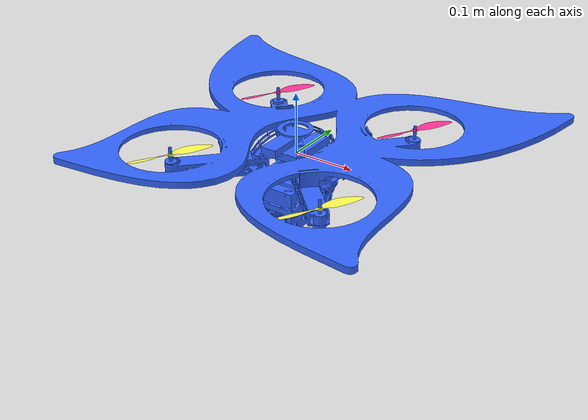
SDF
<?xml version="1.0" ?>
<sdf version='1.11'>
  <model name='Butterflybot'>

    <!-- ROBOT BODY -->

    <!-- Base -->
    <link name='base_link'>
      <inertial>
        <pose>0.0467837442624986 0.047668828289127 0.0302566124276802 0 0 0</pose>
        <mass>1.81343265737798</mass>
        <inertia>
          <ixx>0.0292434022065882</ixx>
          <ixy>2.3758686826485899e-07</ixy>
          <ixz>-0.00012290016217477099</ixz>
          <iyy>0.037851344971650498</iyy>
          <iyz>1.35402349531979e-06</iyz>
          <izz>0.0087084350366914698</izz>
        </inertia>
      </inertial>
      <collision name='base_link_collision'>
        <pose>0 0 0 0 0 0</pose>
        <geometry>
          <mesh>
            <scale>1 1 1</scale>
            <uri>model://meshes/base_link.STL</uri>
          </mesh>
        </geometry>
      </collision>
      <visual name='base_link_visual'>
        <pose>0 0 0 0 0 0</pose>
        <geometry>
          <mesh>
            <scale>1 1 1</scale>
            <uri>model://meshes/base_link.STL</uri>
          </mesh>
        </geometry>
        <material>
          <diffuse>0.2 0.4 1.0 1.0</diffuse>
          <ambient>0.2 0.4 1.0 1.0</ambient>
        </material>
      </visual>
    </link>

    <!-- Front Left -->
    <joint name='joint_front_left' type='revolute'>
      <pose relative_to='base_link'>-0.079189999999999997 0.062068999999999999 0.058430000000000003 1.5708 0 -0.27447999999999984</pose>
      <parent>base_link</parent>
      <child>link_front_left</child>
      <axis>
        <xyz>0 -1 0</xyz>
        <limit>
          <lower>-inf</lower>
          <upper>inf</upper>
        </limit>
        <dynamics>
          <spring_reference>0</spring_reference>
          <spring_stiffness>0</spring_stiffness>
        </dynamics>
      </axis>
    </joint>
    <link name='link_front_left'>
      <pose relative_to='joint_front_left'>0 0 0 0 0 0</pose>
      <inertial>
        <pose>-1.3158665906898301e-08 0.0030876204619819199 3.2896587114084099e-08 0 0 0</pose>
        <mass>0.00097127102853952004</mass>
        <inertia>
          <ixx>1.0768895837296399e-06</ixx>
          <ixy>3.8328099170122897e-14</ixy>
          <ixz>1.9302501471666401e-07</ixz>
          <iyy>1.1185884576620301e-06</iyy>
          <iyz>2.18108405894349e-14</iyz>
          <izz>4.3791642931003e-08</izz>
        </inertia>
      </inertial>
      <collision name='link_front_left_collision'>
        <pose>0 0 0 0 0 0</pose>
        <geometry>
          <mesh>
            <scale>1 1 1</scale>
            <uri>model://meshes/link_front_left.STL</uri>
          </mesh>
        </geometry>
      </collision>
      <visual name='link_front_left_visual'>
        <pose>0 0 0 0 0 0</pose>
        <geometry>
          <mesh>
            <scale>1 1 1</scale>
            <uri>model://meshes/link_front_left.STL</uri>
          </mesh>
        </geometry>
        <material>
          <diffuse>1.0 0.2 0.6 1.0</diffuse>
          <ambient>1.0 0.2 0.6 1.0</ambient>
        </material>
      </visual>
    </link>

    <!-- Front Right -->
    <joint name='joint_front_right' type='revolute'>
      <pose relative_to='base_link'>0.17136999999999999 0.062745999999999996 0.059461 1.5708 0 -0.27447999999999984</pose>
      <parent>base_link</parent>
      <child>link_front_right</child>
      <axis>
        <xyz>0 -1 0</xyz>
        <limit>
          <lower>-inf</lower>
          <upper>inf</upper>
        </limit>
        <dynamics>
          <spring_reference>0</spring_reference>
          <spring_stiffness>0</spring_stiffness>
        </dynamics>
      </axis>
    </joint>
    <link name='link_front_right'>
      <pose relative_to='joint_front_right'>0 0 0 0 0 0</pose>
      <inertial>
        <pose>1.10804414255039e-08 0.0030876220561473302 -7.1078507857258404e-08 0 0 0</pose>
        <mass>0.000971268794454539</mass>
        <inertia>
          <ixx>1.0768847108197401e-06</ixx>
          <ixy>5.65245392107505e-14</ixy>
          <ixz>1.93023878397352e-07</ixz>
          <iyy>1.1185833114050301e-06</iyy>
          <iyz>-5.1246892916307002e-14</iyz>
          <izz>4.3791367120243599e-08</izz>
        </inertia>
      </inertial>
      <collision name='link_front_right_collision'>
        <pose>0 0 0 0 0 0</pose>
        <geometry>
          <mesh>
            <scale>1 1 1</scale>
            <uri>model://meshes/link_front_right.STL</uri>
          </mesh>
        </geometry>
      </collision>
      <visual name='link_front_right_visual'>
        <pose>0 0 0 0 0 0</pose>
        <geometry>
          <mesh>
            <scale>1 1 1</scale>
            <uri>model://meshes/link_front_right.STL</uri>
          </mesh>
        </geometry>
        <material>
          <diffuse>1.0 0.2 0.6 1.0</diffuse>
          <ambient>1.0 0.2 0.6 1.0</ambient>
        </material>
      </visual>
    </link>

    <!-- Rear Left -->
    <joint name='joint_rear_left' type='revolute'>
      <pose relative_to='base_link'>-0.080467999999999998 -0.19675000000000001 0.054993 1.5708 0 -0.27447999999999984</pose>
      <parent>base_link</parent>
      <child>link_rear_left</child>
      <axis>
        <xyz>0 -1 0</xyz>
        <limit>
          <lower>-inf</lower>
          <upper>inf</upper>
        </limit>
        <dynamics>
          <spring_reference>0</spring_reference>
          <spring_stiffness>0</spring_stiffness>
        </dynamics>
      </axis>
    </joint>
    <link name='link_rear_left'>
      <pose relative_to='joint_rear_left'>0 0 0 0 0 0</pose>
      <inertial>
        <pose>-1.3159026139575301e-08 0.0030876236503368901 3.2898901047850897e-08 0 0 0</pose>
        <mass>0.00097127102853952004</mass>
        <inertia>
          <ixx>1.0768798381927601e-06</ixx>
          <ixy>3.8328125808511603e-14</ixy>
          <ixz>1.9302274210829399e-07</ixz>
          <iyy>1.1185781654340401e-06</iyy>
          <iyz>2.1811183096077101e-14</iyz>
          <izz>4.3791091312534198e-08</izz>
        </inertia>
      </inertial>
      <collision name='link_rear_left_collision'>
        <pose>0 0 0 0 0 0</pose>
        <geometry>
          <mesh>
            <scale>1 1 1</scale>
            <uri>model://meshes/link_rear_left.STL</uri>
          </mesh>
        </geometry>
      </collision>
      <visual name='link_rear_left_visual'>
        <pose>0 0 0 0 0 0</pose>
        <geometry>
          <mesh>
            <scale>1 1 1</scale>
            <uri>model://meshes/link_rear_left.STL</uri>
          </mesh>
        </geometry>
        <material>
          <diffuse>1.0 1.0 0.3 1.0</diffuse>
          <ambient>1.0 1.0 0.3 1.0</ambient>
        </material>
      </visual>
    </link>

    <!-- Rear Right -->
    <joint name='joint_rear_right' type='revolute'>
      <pose relative_to='base_link'>0.17607 -0.19605 0.051529999999999999 1.5708 0 -0.27447999999999984</pose>
      <parent>base_link</parent>
      <child>link_rear_right</child>
      <axis>
        <xyz>0 -1 0</xyz>
        <limit>
          <lower>-inf</lower>
          <upper>inf</upper>
        </limit>
        <dynamics>
          <spring_reference>0</spring_reference>
          <spring_stiffness>0</spring_stiffness>
        </dynamics>
      </axis>
    </joint>
    <link name='link_rear_right'>
      <pose relative_to='joint_rear_right'>0 0 0 0 0 0</pose>
      <inertial>
        <pose>1.1080436457255899e-08 0.0030876220561439202 -7.1077704361099894e-08 0 0 0</pose>
        <mass>0.000971268794454539</mass>
        <inertia>
          <ixx>1.0768847111581501e-06</ixx>
          <ixy>5.6524537061138701e-14</ixy>
          <ixz>1.93023878437882e-07</ixz>
          <iyy>1.1185833117482701e-06</iyy>
          <iyz>-5.1247553697434301e-14</iyz>
          <izz>4.3791367125021401e-08</izz>
        </inertia>
      </inertial>
      <collision name='link_rear_right_collision'>
        <pose>0 0 0 0 0 0</pose>
        <geometry>
          <mesh>
            <scale>1 1 1</scale>
            <uri>model://meshes/link_rear_right.STL</uri>
          </mesh>
        </geometry>
      </collision>
      <visual name='link_rear_right_visual'>
        <pose>0 0 0 0 0 0</pose>
        <geometry>
          <mesh>
            <scale>1 1 1</scale>
            <uri>model://meshes/link_rear_right.STL</uri>
          </mesh>
        </geometry>
        <material>
          <diffuse>1.0 1.0 0.3 1.0</diffuse>
          <ambient>1.0 1.0 0.3 1.0</ambient>
        </material>
      </visual>
    </link>

    <!-- SENSORS -->

    <!-- LiDAR-->
    <link name="lidar_link">
      <pose>0 0 0 0 0 -1.57</pose>
      <sensor name='gpu_lidar' type='gpu_lidar'>
        <pose relative_to='lidar_link'>0 0 0 0 0 3.14</pose>
        <topic>lidar_scan</topic>
        <update_rate>10</update_rate>
        <ray>
            <scan>
                <horizontal>
                    <samples>640</samples>
                    <resolution>1</resolution>
                    <min_angle>-1.396263</min_angle>
                    <max_angle>1.396263</max_angle>
                </horizontal>
                <vertical>
                    <samples>1</samples>
                    <resolution>0.01</resolution>
                    <min_angle>0</min_angle>
                    <max_angle>0</max_angle>
                </vertical>
            </scan>
            <range>
                <min>0.08</min>
                <max>10.0</max>
                <resolution>0.01</resolution>
            </range>
        </ray>
        <always_on>1</always_on>
        <visualize>true</visualize>
      </sensor>
    </link>

    <joint name="lidar_joint" type="fixed">
      <parent>base_link</parent>
      <child>lidar_link</child>
    </joint>

    <!-- Camera -->
    <link name="camera_link">
      <pose>0 0 0 0 0 -1.57</pose>
      <sensor name="boundingbox_camera" type="boundingbox_camera">
         <pose relative_to='camera_link'>0 0 0.5 0 0 3.14</pose>
         <topic>boxes</topic> <!-- Do not change this -->
         <camera>
           <box_type>2d</box_type>
           <horizontal_fov>1.047</horizontal_fov>
           <image>
             <width>800</width>
             <height>600</height>
           </image>
           <clip>
             <near>0.1</near>
             <far>10</far>
           </clip>
         </camera>
         <always_on>1</always_on>
         <update_rate>10</update_rate>
         <visualize>true</visualize>
      </sensor>
    </link>

    <joint name="camera_joint" type="fixed">
      <parent>base_link</parent>
      <child>camera_link</child>
    </joint>

    <!-- IMU -->
    <link name="imu_link">
      <sensor name="imu_sensor" type="imu">
        <pose relative_to='imu_link'>0 0 0.5 0 0 3.14</pose>
        <topic>imu/data</topic>
        <update_rate>100</update_rate>
        <always_on>true</always_on>
        <visualize>false</visualize>
        <imu>
          <linear_acceleration>
            <x>
              <noise type="gaussian">
                <mean>0.0</mean>
                <stddev>0.01</stddev>
              </noise>
            </x>
            <y>
              <noise type="gaussian">
                <mean>0.0</mean>
                <stddev>0.01</stddev>
              </noise>
            </y>
            <z>
              <noise type="gaussian">
                <mean>0.0</mean>
                <stddev>0.01</stddev>
              </noise>
            </z>
          </linear_acceleration>
          <angular_velocity>
            <x>
              <noise type="gaussian">
                <mean>0.0</mean>
                <stddev>0.01</stddev>
              </noise>
            </x>
            <y>
              <noise type="gaussian">
                <mean>0.0</mean>
                <stddev>0.01</stddev>
              </noise>
            </y>
            <z>
              <noise type="gaussian">
                <mean>0.0</mean>
                <stddev>0.01</stddev>
              </noise>
            </z>
          </angular_velocity>
        </imu>
      </sensor>
    </link>

    <joint name="imu_joint" type="fixed">
      <parent>base_link</parent>
      <child>imu_link</child>
    </joint>

    <!-- PLUGINS -->

    <!-- Thruster plugins-->
    <plugin
      filename="gz-sim-thruster-system"
      name="gz::sim::systems::Thruster">
      <use_angvel_cmd>0</use_angvel_cmd>
      <joint_name>joint_front_left</joint_name>
      <thrust_coefficient>0.005</thrust_coefficient>
      <fluid_density>1.225</fluid_density>
      <propeller_diameter>0.2</propeller_diameter>
    </plugin>

    <plugin
      filename="gz-sim-thruster-system"
      name="gz::sim::systems::Thruster">
      <use_angvel_cmd>0</use_angvel_cmd>
      <joint_name>joint_front_right</joint_name>
      <thrust_coefficient>0.005</thrust_coefficient>
      <fluid_density>1.225</fluid_density>
      <propeller_diameter>0.2</propeller_diameter>
    </plugin>

     <plugin
      filename="gz-sim-thruster-system"
      name="gz::sim::systems::Thruster">
      <use_angvel_cmd>0</use_angvel_cmd>
      <joint_name>joint_rear_left</joint_name>
      <thrust_coefficient>0.005</thrust_coefficient>
      <fluid_density>1.225</fluid_density>
      <propeller_diameter>0.2</propeller_diameter>
    </plugin>

    <plugin
      filename="gz-sim-thruster-system"
      name="gz::sim::systems::Thruster">
      <use_angvel_cmd>0</use_angvel_cmd>
      <joint_name>joint_rear_right</joint_name>
      <thrust_coefficient>0.005</thrust_coefficient>
      <fluid_density>1.225</fluid_density>
      <propeller_diameter>0.2</propeller_diameter>
    </plugin>

    <!-- Joint-state-publisher plugins-->
    <plugin
      filename="gz-sim-joint-state-publisher-system"
      name="gz::sim::systems::JointStatePublisher">
      <joint_name>joint_front_left</joint_name>
    </plugin>

    <plugin
      filename="gz-sim-joint-state-publisher-system"
      name="gz::sim::systems::JointStatePublisher">
      <joint_name>joint_front_right</joint_name>
    </plugin>

    <plugin
      filename="gz-sim-joint-state-publisher-system"
      name="gz::sim::systems::JointStatePublisher">
      <joint_name>joint_rear_left</joint_name>
    </plugin>

    <plugin
      filename="gz-sim-joint-state-publisher-system"
      name="gz::sim::systems::JointStatePublisher">
      <joint_name>joint_rear_right</joint_name>
    </plugin>

    <!-- Joint-position-controller plugins-->
    <plugin
      filename="gz-sim-joint-position-controller-system"
      name="gz::sim::systems::JointPositionController">
      <joint_name>joint_front_left</joint_name>
      <topic>joint_front_left_topic</topic>
      <p_gain>1</p_gain>
      <i_gain>0.1</i_gain>
      <d_gain>0.01</d_gain>
      <i_max>1</i_max>
      <i_min>-1</i_min>
      <cmd_max>1000</cmd_max>
      <cmd_min>-1000</cmd_min>
      <force>0.0</force>
    </plugin>

    <plugin
      filename="gz-sim-joint-position-controller-system"
      name="gz::sim::systems::JointPositionController">
      <joint_name>joint_front_right</joint_name>
      <topic>joint_front_right_topic</topic>
      <p_gain>1</p_gain>
      <i_gain>0.1</i_gain>
      <d_gain>0.01</d_gain>
      <i_max>1</i_max>
      <i_min>-1</i_min>
      <cmd_max>1000</cmd_max>
      <cmd_min>-1000</cmd_min>
      <force>0.0</force>
    </plugin>

    <plugin
      filename="gz-sim-joint-position-controller-system"
      name="gz::sim::systems::JointPositionController">
      <joint_name>joint_rear_left</joint_name>
      <topic>joint_rear_left_topic</topic>
      <p_gain>1</p_gain>
      <i_gain>0.1</i_gain>
      <d_gain>0.01</d_gain>
      <i_max>1</i_max>
      <i_min>-1</i_min>
      <cmd_max>1000</cmd_max>
      <cmd_min>-1000</cmd_min>
      <force>0.0</force>
    </plugin>

    <plugin
      filename="gz-sim-joint-position-controller-system"
      name="gz::sim::systems::JointPositionController">
      <joint_name>joint_rear_right</joint_name>
      <topic>joint_rear_right_topic</topic>
      <p_gain>1</p_gain>
      <i_gain>0.1</i_gain>
      <d_gain>0.01</d_gain>
      <i_max>1</i_max>
      <i_min>-1</i_min>
      <cmd_max>1000</cmd_max>
      <cmd_min>-1000</cmd_min>
      <force>0.0</force>
    </plugin>

    <!-- Pose, Static model, Self Collide -->
    <pose>0 0 0.0 0 0 0</pose>
      <static>false</static>
      <self_collide>false</self_collide>
  </model>
</sdf>
